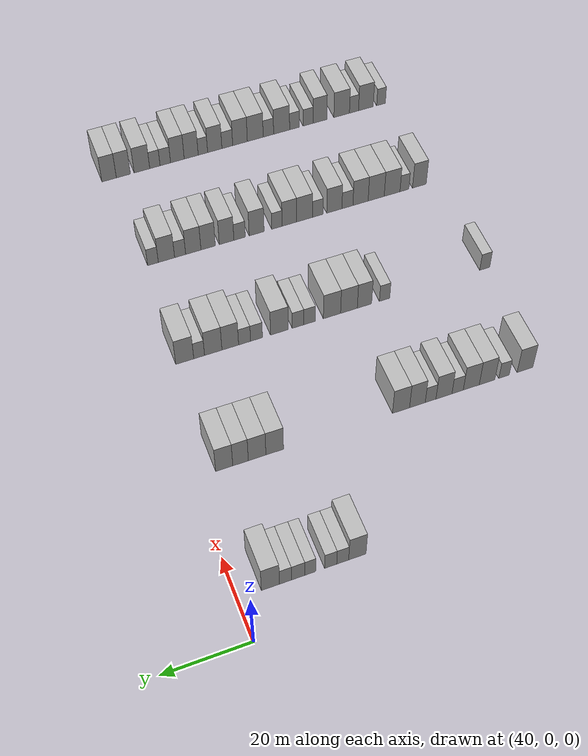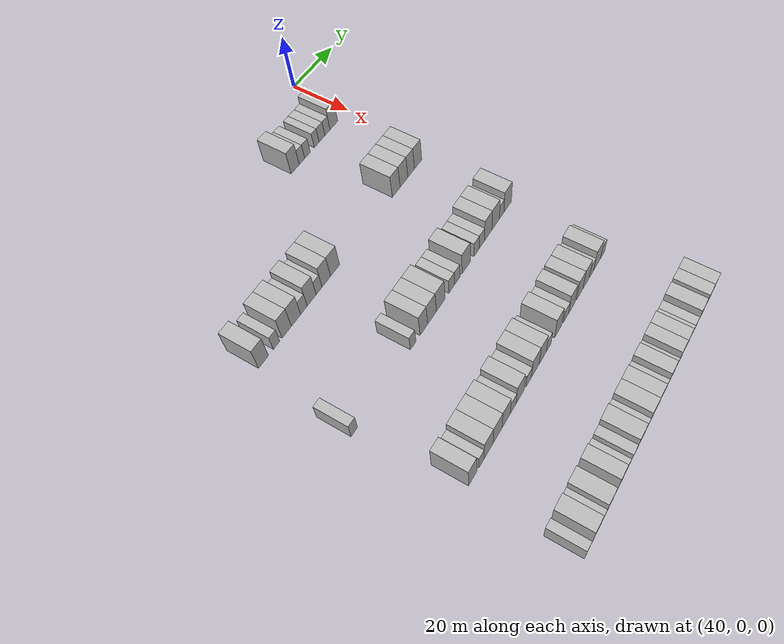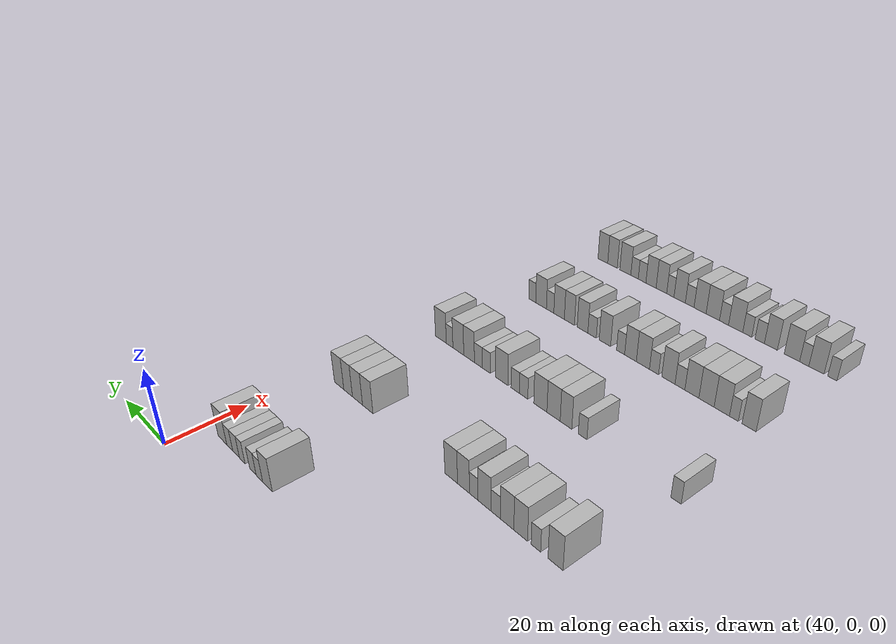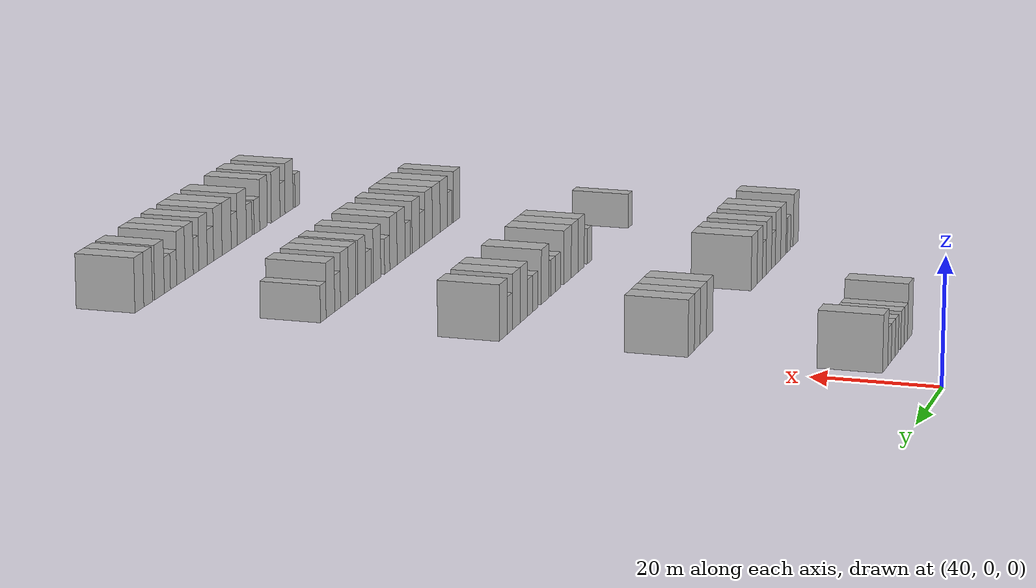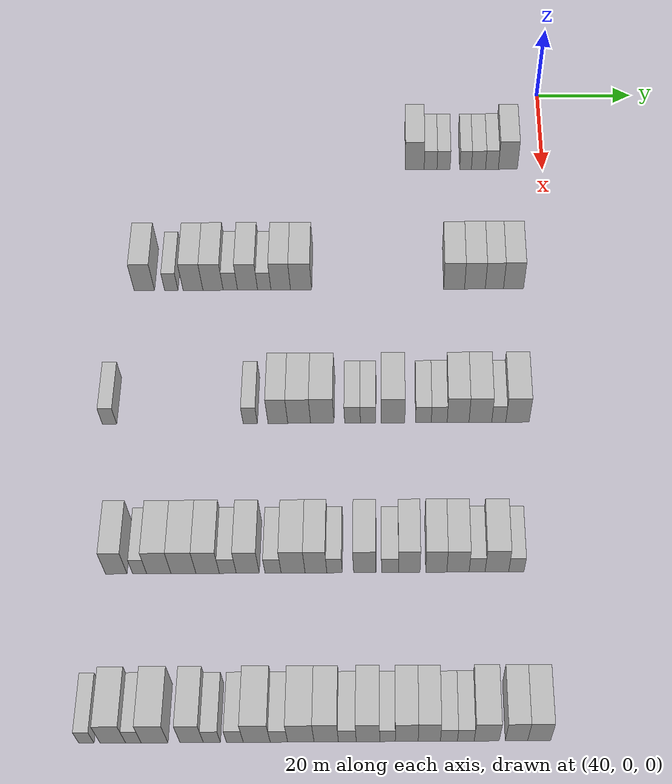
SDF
<sdf version="1.6">
 <world name="default">
  <model name="building_338">
   <static>1</static>
   <pose>55.0000 -26.6779 0 0.000000 0.000000 0.000000</pose>
   <link name="link">
    <pose>0 0 4.50 0 0 0</pose>
    <collision name="collision"><geometry><box><size>10.0000 3.9303 9.0000</size></box></geometry></collision>
    <visual name="visual">
     <cast_shadows>0</cast_shadows>
     <geometry><box><size>10.0000 3.9303 9.0000</size></box></geometry>
     <material>
      <script>
       <uri>model://HANNAS_wall/materials/scripts</uri>
       <uri>model://HANNAS_wall/materials/textures</uri>
       <name>vrc/HANNAS_wall</name>
      </script>
     </material>
    </visual>
   </link>
  </model>
  <model name="building_339">
   <static>1</static>
   <pose>55.0000 -23.3719 0 0.000000 0.000000 0.000000</pose>
   <link name="link">
    <pose>0 0 3.00 0 0 0</pose>
    <collision name="collision"><geometry><box><size>10.0000 2.6817 6.0000</size></box></geometry></collision>
    <visual name="visual">
     <cast_shadows>0</cast_shadows>
     <geometry><box><size>10.0000 2.6817 6.0000</size></box></geometry>
     <material>
      <script>
       <uri>model://HANNAS_wall/materials/scripts</uri>
       <uri>model://HANNAS_wall/materials/textures</uri>
       <name>vrc/HANNAS_wall</name>
      </script>
     </material>
    </visual>
   </link>
  </model>
  <model name="building_340">
   <static>1</static>
   <pose>55.0000 -20.6647 0 0.000000 0.000000 0.000000</pose>
   <link name="link">
    <pose>0 0 3.00 0 0 0</pose>
    <collision name="collision"><geometry><box><size>10.0000 2.7328 6.0000</size></box></geometry></collision>
    <visual name="visual">
     <cast_shadows>0</cast_shadows>
     <geometry><box><size>10.0000 2.7328 6.0000</size></box></geometry>
     <material>
      <script>
       <uri>model://HANNAS_wall/materials/scripts</uri>
       <uri>model://HANNAS_wall/materials/textures</uri>
       <name>vrc/HANNAS_wall</name>
      </script>
     </material>
    </visual>
   </link>
  </model>
  <model name="building_341">
   <static>1</static>
   <pose>55.0000 -16.0815 0 0.000000 0.000000 0.000000</pose>
   <link name="link">
    <pose>0 0 3.00 0 0 0</pose>
    <collision name="collision"><geometry><box><size>10.0000 2.4335 6.0000</size></box></geometry></collision>
    <visual name="visual">
     <cast_shadows>0</cast_shadows>
     <geometry><box><size>10.0000 2.4335 6.0000</size></box></geometry>
     <material>
      <script>
       <uri>model://HANNAS_wall/materials/scripts</uri>
       <uri>model://HANNAS_wall/materials/textures</uri>
       <name>vrc/HANNAS_wall</name>
      </script>
     </material>
    </visual>
   </link>
  </model>
  <model name="building_342">
   <static>1</static>
   <pose>55.0000 -13.3876 0 0.000000 0.000000 0.000000</pose>
   <link name="link">
    <pose>0 0 3.00 0 0 0</pose>
    <collision name="collision"><geometry><box><size>10.0000 2.9544 6.0000</size></box></geometry></collision>
    <visual name="visual">
     <cast_shadows>0</cast_shadows>
     <geometry><box><size>10.0000 2.9544 6.0000</size></box></geometry>
     <material>
      <script>
       <uri>model://HANNAS_wall/materials/scripts</uri>
       <uri>model://HANNAS_wall/materials/textures</uri>
       <name>vrc/HANNAS_wall</name>
      </script>
     </material>
    </visual>
   </link>
  </model>
  <model name="building_343">
   <static>1</static>
   <pose>55.0000 -10.5770 0 0.000000 0.000000 0.000000</pose>
   <link name="link">
    <pose>0 0 3.00 0 0 0</pose>
    <collision name="collision"><geometry><box><size>10.0000 2.6668 6.0000</size></box></geometry></collision>
    <visual name="visual">
     <cast_shadows>0</cast_shadows>
     <geometry><box><size>10.0000 2.6668 6.0000</size></box></geometry>
     <material>
      <script>
       <uri>model://HANNAS_wall/materials/scripts</uri>
       <uri>model://HANNAS_wall/materials/textures</uri>
       <name>vrc/HANNAS_wall</name>
      </script>
     </material>
    </visual>
   </link>
  </model>
  <model name="building_344">
   <static>1</static>
   <pose>55.0000 -7.2520 0 0.000000 0.000000 0.000000</pose>
   <link name="link">
    <pose>0 0 4.50 0 0 0</pose>
    <collision name="collision"><geometry><box><size>10.0000 3.9832 9.0000</size></box></geometry></collision>
    <visual name="visual">
     <cast_shadows>0</cast_shadows>
     <geometry><box><size>10.0000 3.9832 9.0000</size></box></geometry>
     <material>
      <script>
       <uri>model://HANNAS_wall/materials/scripts</uri>
       <uri>model://HANNAS_wall/materials/textures</uri>
       <name>vrc/HANNAS_wall</name>
      </script>
     </material>
    </visual>
   </link>
  </model>
  <model name="building_540">
   <static>1</static>
   <pose>85.0000 -80.5701 0 0.000000 0.000000 0.000000</pose>
   <link name="link">
    <pose>0 0 4.50 0 0 0</pose>
    <collision name="collision"><geometry><box><size>10.0000 4.0332 9.0000</size></box></geometry></collision>
    <visual name="visual">
     <cast_shadows>0</cast_shadows>
     <geometry><box><size>10.0000 4.0332 9.0000</size></box></geometry>
     <material>
      <script>
       <uri>model://HANNAS_wall/materials/scripts</uri>
       <uri>model://HANNAS_wall/materials/textures</uri>
       <name>vrc/HANNAS_wall</name>
      </script>
     </material>
    </visual>
   </link>
  </model>
  <model name="building_541">
   <static>1</static>
   <pose>85.0000 -75.2313 0 0.000000 0.000000 0.000000</pose>
   <link name="link">
    <pose>0 0 3.00 0 0 0</pose>
    <collision name="collision"><geometry><box><size>10.0000 2.6445 6.0000</size></box></geometry></collision>
    <visual name="visual">
     <cast_shadows>0</cast_shadows>
     <geometry><box><size>10.0000 2.6445 6.0000</size></box></geometry>
     <material>
      <script>
       <uri>model://HANNAS_wall/materials/scripts</uri>
       <uri>model://HANNAS_wall/materials/textures</uri>
       <name>vrc/HANNAS_wall</name>
      </script>
     </material>
    </visual>
   </link>
  </model>
  <model name="building_542">
   <static>1</static>
   <pose>85.0000 -70.9464 0 0.000000 0.000000 0.000000</pose>
   <link name="link">
    <pose>0 0 4.50 0 0 0</pose>
    <collision name="collision"><geometry><box><size>10.0000 3.9252 9.0000</size></box></geometry></collision>
    <visual name="visual">
     <cast_shadows>0</cast_shadows>
     <geometry><box><size>10.0000 3.9252 9.0000</size></box></geometry>
     <material>
      <script>
       <uri>model://HANNAS_wall/materials/scripts</uri>
       <uri>model://HANNAS_wall/materials/textures</uri>
       <name>vrc/HANNAS_wall</name>
      </script>
     </material>
    </visual>
   </link>
  </model>
  <model name="building_543">
   <static>1</static>
   <pose>85.0000 -66.9853 0 0.000000 0.000000 0.000000</pose>
   <link name="link">
    <pose>0 0 4.50 0 0 0</pose>
    <collision name="collision"><geometry><box><size>10.0000 3.9970 9.0000</size></box></geometry></collision>
    <visual name="visual">
     <cast_shadows>0</cast_shadows>
     <geometry><box><size>10.0000 3.9970 9.0000</size></box></geometry>
     <material>
      <script>
       <uri>model://HANNAS_wall/materials/scripts</uri>
       <uri>model://HANNAS_wall/materials/textures</uri>
       <name>vrc/HANNAS_wall</name>
      </script>
     </material>
    </visual>
   </link>
  </model>
  <model name="building_544">
   <static>1</static>
   <pose>85.0000 -63.5674 0 0.000000 0.000000 0.000000</pose>
   <link name="link">
    <pose>0 0 3.00 0 0 0</pose>
    <collision name="collision"><geometry><box><size>10.0000 2.8388 6.0000</size></box></geometry></collision>
    <visual name="visual">
     <cast_shadows>0</cast_shadows>
     <geometry><box><size>10.0000 2.8388 6.0000</size></box></geometry>
     <material>
      <script>
       <uri>model://HANNAS_wall/materials/scripts</uri>
       <uri>model://HANNAS_wall/materials/textures</uri>
       <name>vrc/HANNAS_wall</name>
      </script>
     </material>
    </visual>
   </link>
  </model>
  <model name="building_545">
   <static>1</static>
   <pose>85.0000 -60.1618 0 0.000000 0.000000 0.000000</pose>
   <link name="link">
    <pose>0 0 4.50 0 0 0</pose>
    <collision name="collision"><geometry><box><size>10.0000 3.9724 9.0000</size></box></geometry></collision>
    <visual name="visual">
     <cast_shadows>0</cast_shadows>
     <geometry><box><size>10.0000 3.9724 9.0000</size></box></geometry>
     <material>
      <script>
       <uri>model://HANNAS_wall/materials/scripts</uri>
       <uri>model://HANNAS_wall/materials/textures</uri>
       <name>vrc/HANNAS_wall</name>
      </script>
     </material>
    </visual>
   </link>
  </model>
  <model name="building_546">
   <static>1</static>
   <pose>85.0000 -56.8523 0 0.000000 0.000000 0.000000</pose>
   <link name="link">
    <pose>0 0 3.00 0 0 0</pose>
    <collision name="collision"><geometry><box><size>10.0000 2.6466 6.0000</size></box></geometry></collision>
    <visual name="visual">
     <cast_shadows>0</cast_shadows>
     <geometry><box><size>10.0000 2.6466 6.0000</size></box></geometry>
     <material>
      <script>
       <uri>model://HANNAS_wall/materials/scripts</uri>
       <uri>model://HANNAS_wall/materials/textures</uri>
       <name>vrc/HANNAS_wall</name>
      </script>
     </material>
    </visual>
   </link>
  </model>
  <model name="building_547">
   <static>1</static>
   <pose>85.0000 -53.5977 0 0.000000 0.000000 0.000000</pose>
   <link name="link">
    <pose>0 0 4.50 0 0 0</pose>
    <collision name="collision"><geometry><box><size>10.0000 3.8628 9.0000</size></box></geometry></collision>
    <visual name="visual">
     <cast_shadows>0</cast_shadows>
     <geometry><box><size>10.0000 3.8628 9.0000</size></box></geometry>
     <material>
      <script>
       <uri>model://HANNAS_wall/materials/scripts</uri>
       <uri>model://HANNAS_wall/materials/textures</uri>
       <name>vrc/HANNAS_wall</name>
      </script>
     </material>
    </visual>
   </link>
  </model>
  <model name="building_548">
   <static>1</static>
   <pose>85.0000 -49.5736 0 0.000000 0.000000 0.000000</pose>
   <link name="link">
    <pose>0 0 4.50 0 0 0</pose>
    <collision name="collision"><geometry><box><size>10.0000 4.1854 9.0000</size></box></geometry></collision>
    <visual name="visual">
     <cast_shadows>0</cast_shadows>
     <geometry><box><size>10.0000 4.1854 9.0000</size></box></geometry>
     <material>
      <script>
       <uri>model://HANNAS_wall/materials/scripts</uri>
       <uri>model://HANNAS_wall/materials/textures</uri>
       <name>vrc/HANNAS_wall</name>
      </script>
     </material>
    </visual>
   </link>
  </model>
  <model name="building_549">
   <static>1</static>
   <pose>85.0000 -19.2802 0 0.000000 0.000000 0.000000</pose>
   <link name="link">
    <pose>0 0 4.50 0 0 0</pose>
    <collision name="collision"><geometry><box><size>10.0000 4.1338 9.0000</size></box></geometry></collision>
    <visual name="visual">
     <cast_shadows>0</cast_shadows>
     <geometry><box><size>10.0000 4.1338 9.0000</size></box></geometry>
     <material>
      <script>
       <uri>model://HANNAS_wall/materials/scripts</uri>
       <uri>model://HANNAS_wall/materials/textures</uri>
       <name>vrc/HANNAS_wall</name>
      </script>
     </material>
    </visual>
   </link>
  </model>
  <model name="building_550">
   <static>1</static>
   <pose>85.0000 -15.1630 0 0.000000 0.000000 0.000000</pose>
   <link name="link">
    <pose>0 0 4.50 0 0 0</pose>
    <collision name="collision"><geometry><box><size>10.0000 4.1006 9.0000</size></box></geometry></collision>
    <visual name="visual">
     <cast_shadows>0</cast_shadows>
     <geometry><box><size>10.0000 4.1006 9.0000</size></box></geometry>
     <material>
      <script>
       <uri>model://HANNAS_wall/materials/scripts</uri>
       <uri>model://HANNAS_wall/materials/textures</uri>
       <name>vrc/HANNAS_wall</name>
      </script>
     </material>
    </visual>
   </link>
  </model>
  <model name="building_551">
   <static>1</static>
   <pose>85.0000 -11.3084 0 0.000000 0.000000 0.000000</pose>
   <link name="link">
    <pose>0 0 4.50 0 0 0</pose>
    <collision name="collision"><geometry><box><size>10.0000 3.6086 9.0000</size></box></geometry></collision>
    <visual name="visual">
     <cast_shadows>0</cast_shadows>
     <geometry><box><size>10.0000 3.6086 9.0000</size></box></geometry>
     <material>
      <script>
       <uri>model://HANNAS_wall/materials/scripts</uri>
       <uri>model://HANNAS_wall/materials/textures</uri>
       <name>vrc/HANNAS_wall</name>
      </script>
     </material>
    </visual>
   </link>
  </model>
  <model name="building_552">
   <static>1</static>
   <pose>85.0000 -7.5210 0 0.000000 0.000000 0.000000</pose>
   <link name="link">
    <pose>0 0 4.50 0 0 0</pose>
    <collision name="collision"><geometry><box><size>10.0000 3.9662 9.0000</size></box></geometry></collision>
    <visual name="visual">
     <cast_shadows>0</cast_shadows>
     <geometry><box><size>10.0000 3.9662 9.0000</size></box></geometry>
     <material>
      <script>
       <uri>model://HANNAS_wall/materials/scripts</uri>
       <uri>model://HANNAS_wall/materials/textures</uri>
       <name>vrc/HANNAS_wall</name>
      </script>
     </material>
    </visual>
   </link>
  </model>
  <model name="building_763">
   <static>1</static>
   <pose>115.0000 -84.5802 0 0.000000 0.000000 0.000000</pose>
   <link name="link">
    <pose>0 0 3.00 0 0 0</pose>
    <collision name="collision"><geometry><box><size>10.0000 2.6753 6.0000</size></box></geometry></collision>
    <visual name="visual">
     <cast_shadows>0</cast_shadows>
     <geometry><box><size>10.0000 2.6753 6.0000</size></box></geometry>
     <material>
      <script>
       <uri>model://HANNAS_wall/materials/scripts</uri>
       <uri>model://HANNAS_wall/materials/textures</uri>
       <name>vrc/HANNAS_wall</name>
      </script>
     </material>
    </visual>
   </link>
  </model>
  <model name="building_764">
   <static>1</static>
   <pose>115.0000 -58.2425 0 0.000000 0.000000 0.000000</pose>
   <link name="link">
    <pose>0 0 3.00 0 0 0</pose>
    <collision name="collision"><geometry><box><size>10.0000 2.6667 6.0000</size></box></geometry></collision>
    <visual name="visual">
     <cast_shadows>0</cast_shadows>
     <geometry><box><size>10.0000 2.6667 6.0000</size></box></geometry>
     <material>
      <script>
       <uri>model://HANNAS_wall/materials/scripts</uri>
       <uri>model://HANNAS_wall/materials/textures</uri>
       <name>vrc/HANNAS_wall</name>
      </script>
     </material>
    </visual>
   </link>
  </model>
  <model name="building_765">
   <static>1</static>
   <pose>115.0000 -53.0702 0 0.000000 0.000000 0.000000</pose>
   <link name="link">
    <pose>0 0 4.50 0 0 0</pose>
    <collision name="collision"><geometry><box><size>10.0000 3.6779 9.0000</size></box></geometry></collision>
    <visual name="visual">
     <cast_shadows>0</cast_shadows>
     <geometry><box><size>10.0000 3.6779 9.0000</size></box></geometry>
     <material>
      <script>
       <uri>model://HANNAS_wall/materials/scripts</uri>
       <uri>model://HANNAS_wall/materials/textures</uri>
       <name>vrc/HANNAS_wall</name>
      </script>
     </material>
    </visual>
   </link>
  </model>
  <model name="building_766">
   <static>1</static>
   <pose>115.0000 -49.0939 0 0.000000 0.000000 0.000000</pose>
   <link name="link">
    <pose>0 0 4.50 0 0 0</pose>
    <collision name="collision"><geometry><box><size>10.0000 4.2746 9.0000</size></box></geometry></collision>
    <visual name="visual">
     <cast_shadows>0</cast_shadows>
     <geometry><box><size>10.0000 4.2746 9.0000</size></box></geometry>
     <material>
      <script>
       <uri>model://HANNAS_wall/materials/scripts</uri>
       <uri>model://HANNAS_wall/materials/textures</uri>
       <name>vrc/HANNAS_wall</name>
      </script>
     </material>
    </visual>
   </link>
  </model>
  <model name="building_767">
   <static>1</static>
   <pose>115.0000 -44.7651 0 0.000000 0.000000 0.000000</pose>
   <link name="link">
    <pose>0 0 4.50 0 0 0</pose>
    <collision name="collision"><geometry><box><size>10.0000 4.3829 9.0000</size></box></geometry></collision>
    <visual name="visual">
     <cast_shadows>0</cast_shadows>
     <geometry><box><size>10.0000 4.3829 9.0000</size></box></geometry>
     <material>
      <script>
       <uri>model://HANNAS_wall/materials/scripts</uri>
       <uri>model://HANNAS_wall/materials/textures</uri>
       <name>vrc/HANNAS_wall</name>
      </script>
     </material>
    </visual>
   </link>
  </model>
  <model name="building_768">
   <static>1</static>
   <pose>115.0000 -39.1012 0 0.000000 0.000000 0.000000</pose>
   <link name="link">
    <pose>0 0 3.00 0 0 0</pose>
    <collision name="collision"><geometry><box><size>10.0000 2.9448 6.0000</size></box></geometry></collision>
    <visual name="visual">
     <cast_shadows>0</cast_shadows>
     <geometry><box><size>10.0000 2.9448 6.0000</size></box></geometry>
     <material>
      <script>
       <uri>model://HANNAS_wall/materials/scripts</uri>
       <uri>model://HANNAS_wall/materials/textures</uri>
       <name>vrc/HANNAS_wall</name>
      </script>
     </material>
    </visual>
   </link>
  </model>
  <model name="building_769">
   <static>1</static>
   <pose>115.0000 -36.1831 0 0.000000 0.000000 0.000000</pose>
   <link name="link">
    <pose>0 0 3.00 0 0 0</pose>
    <collision name="collision"><geometry><box><size>10.0000 2.8914 6.0000</size></box></geometry></collision>
    <visual name="visual">
     <cast_shadows>0</cast_shadows>
     <geometry><box><size>10.0000 2.8914 6.0000</size></box></geometry>
     <material>
      <script>
       <uri>model://HANNAS_wall/materials/scripts</uri>
       <uri>model://HANNAS_wall/materials/textures</uri>
       <name>vrc/HANNAS_wall</name>
      </script>
     </material>
    </visual>
   </link>
  </model>
  <model name="building_770">
   <static>1</static>
   <pose>115.0000 -31.5231 0 0.000000 0.000000 0.000000</pose>
   <link name="link">
    <pose>0 0 4.50 0 0 0</pose>
    <collision name="collision"><geometry><box><size>10.0000 4.4288 9.0000</size></box></geometry></collision>
    <visual name="visual">
     <cast_shadows>0</cast_shadows>
     <geometry><box><size>10.0000 4.4288 9.0000</size></box></geometry>
     <material>
      <script>
       <uri>model://HANNAS_wall/materials/scripts</uri>
       <uri>model://HANNAS_wall/materials/textures</uri>
       <name>vrc/HANNAS_wall</name>
      </script>
     </material>
    </visual>
   </link>
  </model>
  <model name="building_771">
   <static>1</static>
   <pose>115.0000 -25.8360 0 0.000000 0.000000 0.000000</pose>
   <link name="link">
    <pose>0 0 3.00 0 0 0</pose>
    <collision name="collision"><geometry><box><size>10.0000 2.9453 6.0000</size></box></geometry></collision>
    <visual name="visual">
     <cast_shadows>0</cast_shadows>
     <geometry><box><size>10.0000 2.9453 6.0000</size></box></geometry>
     <material>
      <script>
       <uri>model://HANNAS_wall/materials/scripts</uri>
       <uri>model://HANNAS_wall/materials/textures</uri>
       <name>vrc/HANNAS_wall</name>
      </script>
     </material>
    </visual>
   </link>
  </model>
  <model name="building_772">
   <static>1</static>
   <pose>115.0000 -22.8825 0 0.000000 0.000000 0.000000</pose>
   <link name="link">
    <pose>0 0 3.00 0 0 0</pose>
    <collision name="collision"><geometry><box><size>10.0000 2.9619 6.0000</size></box></geometry></collision>
    <visual name="visual">
     <cast_shadows>0</cast_shadows>
     <geometry><box><size>10.0000 2.9619 6.0000</size></box></geometry>
     <material>
      <script>
       <uri>model://HANNAS_wall/materials/scripts</uri>
       <uri>model://HANNAS_wall/materials/textures</uri>
       <name>vrc/HANNAS_wall</name>
      </script>
     </material>
    </visual>
   </link>
  </model>
  <model name="building_773">
   <static>1</static>
   <pose>115.0000 -19.3565 0 0.000000 0.000000 0.000000</pose>
   <link name="link">
    <pose>0 0 4.50 0 0 0</pose>
    <collision name="collision"><geometry><box><size>10.0000 4.0900 9.0000</size></box></geometry></collision>
    <visual name="visual">
     <cast_shadows>0</cast_shadows>
     <geometry><box><size>10.0000 4.0900 9.0000</size></box></geometry>
     <material>
      <script>
       <uri>model://HANNAS_wall/materials/scripts</uri>
       <uri>model://HANNAS_wall/materials/textures</uri>
       <name>vrc/HANNAS_wall</name>
      </script>
     </material>
    </visual>
   </link>
  </model>
  <model name="building_774">
   <static>1</static>
   <pose>115.0000 -15.1823 0 0.000000 0.000000 0.000000</pose>
   <link name="link">
    <pose>0 0 4.50 0 0 0</pose>
    <collision name="collision"><geometry><box><size>10.0000 4.2585 9.0000</size></box></geometry></collision>
    <visual name="visual">
     <cast_shadows>0</cast_shadows>
     <geometry><box><size>10.0000 4.2585 9.0000</size></box></geometry>
     <material>
      <script>
       <uri>model://HANNAS_wall/materials/scripts</uri>
       <uri>model://HANNAS_wall/materials/textures</uri>
       <name>vrc/HANNAS_wall</name>
      </script>
     </material>
    </visual>
   </link>
  </model>
  <model name="building_775">
   <static>1</static>
   <pose>115.0000 -11.7386 0 0.000000 0.000000 0.000000</pose>
   <link name="link">
    <pose>0 0 3.00 0 0 0</pose>
    <collision name="collision"><geometry><box><size>10.0000 2.6288 6.0000</size></box></geometry></collision>
    <visual name="visual">
     <cast_shadows>0</cast_shadows>
     <geometry><box><size>10.0000 2.6288 6.0000</size></box></geometry>
     <material>
      <script>
       <uri>model://HANNAS_wall/materials/scripts</uri>
       <uri>model://HANNAS_wall/materials/textures</uri>
       <name>vrc/HANNAS_wall</name>
      </script>
     </material>
    </visual>
   </link>
  </model>
  <model name="building_776">
   <static>1</static>
   <pose>115.0000 -8.2365 0 0.000000 0.000000 0.000000</pose>
   <link name="link">
    <pose>0 0 4.50 0 0 0</pose>
    <collision name="collision"><geometry><box><size>10.0000 4.3753 9.0000</size></box></geometry></collision>
    <visual name="visual">
     <cast_shadows>0</cast_shadows>
     <geometry><box><size>10.0000 4.3753 9.0000</size></box></geometry>
     <material>
      <script>
       <uri>model://HANNAS_wall/materials/scripts</uri>
       <uri>model://HANNAS_wall/materials/textures</uri>
       <name>vrc/HANNAS_wall</name>
      </script>
     </material>
    </visual>
   </link>
  </model>
  <model name="building_984">
   <static>1</static>
   <pose>145.0000 -80.4926 0 0.000000 0.000000 0.000000</pose>
   <link name="link">
    <pose>0 0 4.50 0 0 0</pose>
    <collision name="collision"><geometry><box><size>10.0000 3.7879 9.0000</size></box></geometry></collision>
    <visual name="visual">
     <cast_shadows>0</cast_shadows>
     <geometry><box><size>10.0000 3.7879 9.0000</size></box></geometry>
     <material>
      <script>
       <uri>model://HANNAS_wall/materials/scripts</uri>
       <uri>model://HANNAS_wall/materials/textures</uri>
       <name>vrc/HANNAS_wall</name>
      </script>
     </material>
    </visual>
   </link>
  </model>
  <model name="building_985">
   <static>1</static>
   <pose>145.0000 -76.3743 0 0.000000 0.000000 0.000000</pose>
   <link name="link">
    <pose>0 0 3.00 0 0 0</pose>
    <collision name="collision"><geometry><box><size>10.0000 2.4488 6.0000</size></box></geometry></collision>
    <visual name="visual">
     <cast_shadows>0</cast_shadows>
     <geometry><box><size>10.0000 2.4488 6.0000</size></box></geometry>
     <material>
      <script>
       <uri>model://HANNAS_wall/materials/scripts</uri>
       <uri>model://HANNAS_wall/materials/textures</uri>
       <name>vrc/HANNAS_wall</name>
      </script>
     </material>
    </visual>
   </link>
  </model>
  <model name="building_986">
   <static>1</static>
   <pose>145.0000 -72.9913 0 0.000000 0.000000 0.000000</pose>
   <link name="link">
    <pose>0 0 4.50 0 0 0</pose>
    <collision name="collision"><geometry><box><size>10.0000 4.3173 9.0000</size></box></geometry></collision>
    <visual name="visual">
     <cast_shadows>0</cast_shadows>
     <geometry><box><size>10.0000 4.3173 9.0000</size></box></geometry>
     <material>
      <script>
       <uri>model://HANNAS_wall/materials/scripts</uri>
       <uri>model://HANNAS_wall/materials/textures</uri>
       <name>vrc/HANNAS_wall</name>
      </script>
     </material>
    </visual>
   </link>
  </model>
  <model name="building_987">
   <static>1</static>
   <pose>145.0000 -68.6390 0 0.000000 0.000000 0.000000</pose>
   <link name="link">
    <pose>0 0 4.50 0 0 0</pose>
    <collision name="collision"><geometry><box><size>10.0000 4.3872 9.0000</size></box></geometry></collision>
    <visual name="visual">
     <cast_shadows>0</cast_shadows>
     <geometry><box><size>10.0000 4.3872 9.0000</size></box></geometry>
     <material>
      <script>
       <uri>model://HANNAS_wall/materials/scripts</uri>
       <uri>model://HANNAS_wall/materials/textures</uri>
       <name>vrc/HANNAS_wall</name>
      </script>
     </material>
    </visual>
   </link>
  </model>
  <model name="building_988">
   <static>1</static>
   <pose>145.0000 -64.3834 0 0.000000 0.000000 0.000000</pose>
   <link name="link">
    <pose>0 0 4.50 0 0 0</pose>
    <collision name="collision"><geometry><box><size>10.0000 4.1239 9.0000</size></box></geometry></collision>
    <visual name="visual">
     <cast_shadows>0</cast_shadows>
     <geometry><box><size>10.0000 4.1239 9.0000</size></box></geometry>
     <material>
      <script>
       <uri>model://HANNAS_wall/materials/scripts</uri>
       <uri>model://HANNAS_wall/materials/textures</uri>
       <name>vrc/HANNAS_wall</name>
      </script>
     </material>
    </visual>
   </link>
  </model>
  <model name="building_989">
   <static>1</static>
   <pose>145.0000 -60.8324 0 0.000000 0.000000 0.000000</pose>
   <link name="link">
    <pose>0 0 3.00 0 0 0</pose>
    <collision name="collision"><geometry><box><size>10.0000 2.9783 6.0000</size></box></geometry></collision>
    <visual name="visual">
     <cast_shadows>0</cast_shadows>
     <geometry><box><size>10.0000 2.9783 6.0000</size></box></geometry>
     <material>
      <script>
       <uri>model://HANNAS_wall/materials/scripts</uri>
       <uri>model://HANNAS_wall/materials/textures</uri>
       <name>vrc/HANNAS_wall</name>
      </script>
     </material>
    </visual>
   </link>
  </model>
  <model name="building_990">
   <static>1</static>
   <pose>145.0000 -57.3067 0 0.000000 0.000000 0.000000</pose>
   <link name="link">
    <pose>0 0 4.50 0 0 0</pose>
    <collision name="collision"><geometry><box><size>10.0000 4.0730 9.0000</size></box></geometry></collision>
    <visual name="visual">
     <cast_shadows>0</cast_shadows>
     <geometry><box><size>10.0000 4.0730 9.0000</size></box></geometry>
     <material>
      <script>
       <uri>model://HANNAS_wall/materials/scripts</uri>
       <uri>model://HANNAS_wall/materials/textures</uri>
       <name>vrc/HANNAS_wall</name>
      </script>
     </material>
    </visual>
   </link>
  </model>
  <model name="building_991">
   <static>1</static>
   <pose>145.0000 -52.8490 0 0.000000 0.000000 0.000000</pose>
   <link name="link">
    <pose>0 0 3.00 0 0 0</pose>
    <collision name="collision"><geometry><box><size>10.0000 2.8425 6.0000</size></box></geometry></collision>
    <visual name="visual">
     <cast_shadows>0</cast_shadows>
     <geometry><box><size>10.0000 2.8425 6.0000</size></box></geometry>
     <material>
      <script>
       <uri>model://HANNAS_wall/materials/scripts</uri>
       <uri>model://HANNAS_wall/materials/textures</uri>
       <name>vrc/HANNAS_wall</name>
      </script>
     </material>
    </visual>
   </link>
  </model>
  <model name="building_992">
   <static>1</static>
   <pose>145.0000 -49.3140 0 0.000000 0.000000 0.000000</pose>
   <link name="link">
    <pose>0 0 4.50 0 0 0</pose>
    <collision name="collision"><geometry><box><size>10.0000 4.2274 9.0000</size></box></geometry></collision>
    <visual name="visual">
     <cast_shadows>0</cast_shadows>
     <geometry><box><size>10.0000 4.2274 9.0000</size></box></geometry>
     <material>
      <script>
       <uri>model://HANNAS_wall/materials/scripts</uri>
       <uri>model://HANNAS_wall/materials/textures</uri>
       <name>vrc/HANNAS_wall</name>
      </script>
     </material>
    </visual>
   </link>
  </model>
  <model name="building_993">
   <static>1</static>
   <pose>145.0000 -45.2807 0 0.000000 0.000000 0.000000</pose>
   <link name="link">
    <pose>0 0 4.50 0 0 0</pose>
    <collision name="collision"><geometry><box><size>10.0000 3.8392 9.0000</size></box></geometry></collision>
    <visual name="visual">
     <cast_shadows>0</cast_shadows>
     <geometry><box><size>10.0000 3.8392 9.0000</size></box></geometry>
     <material>
      <script>
       <uri>model://HANNAS_wall/materials/scripts</uri>
       <uri>model://HANNAS_wall/materials/textures</uri>
       <name>vrc/HANNAS_wall</name>
      </script>
     </material>
    </visual>
   </link>
  </model>
  <model name="building_994">
   <static>1</static>
   <pose>145.0000 -41.9987 0 0.000000 0.000000 0.000000</pose>
   <link name="link">
    <pose>0 0 3.00 0 0 0</pose>
    <collision name="collision"><geometry><box><size>10.0000 2.7249 6.0000</size></box></geometry></collision>
    <visual name="visual">
     <cast_shadows>0</cast_shadows>
     <geometry><box><size>10.0000 2.7249 6.0000</size></box></geometry>
     <material>
      <script>
       <uri>model://HANNAS_wall/materials/scripts</uri>
       <uri>model://HANNAS_wall/materials/textures</uri>
       <name>vrc/HANNAS_wall</name>
      </script>
     </material>
    </visual>
   </link>
  </model>
  <model name="building_995">
   <static>1</static>
   <pose>145.0000 -36.6700 0 0.000000 0.000000 0.000000</pose>
   <link name="link">
    <pose>0 0 4.50 0 0 0</pose>
    <collision name="collision"><geometry><box><size>10.0000 3.9324 9.0000</size></box></geometry></collision>
    <visual name="visual">
     <cast_shadows>0</cast_shadows>
     <geometry><box><size>10.0000 3.9324 9.0000</size></box></geometry>
     <material>
      <script>
       <uri>model://HANNAS_wall/materials/scripts</uri>
       <uri>model://HANNAS_wall/materials/textures</uri>
       <name>vrc/HANNAS_wall</name>
      </script>
     </material>
    </visual>
   </link>
  </model>
  <model name="building_996">
   <static>1</static>
   <pose>145.0000 -32.2189 0 0.000000 0.000000 0.000000</pose>
   <link name="link">
    <pose>0 0 3.00 0 0 0</pose>
    <collision name="collision"><geometry><box><size>10.0000 2.9698 6.0000</size></box></geometry></collision>
    <visual name="visual">
     <cast_shadows>0</cast_shadows>
     <geometry><box><size>10.0000 2.9698 6.0000</size></box></geometry>
     <material>
      <script>
       <uri>model://HANNAS_wall/materials/scripts</uri>
       <uri>model://HANNAS_wall/materials/textures</uri>
       <name>vrc/HANNAS_wall</name>
      </script>
     </material>
    </visual>
   </link>
  </model>
  <model name="building_997">
   <static>1</static>
   <pose>145.0000 -28.8271 0 0.000000 0.000000 0.000000</pose>
   <link name="link">
    <pose>0 0 4.50 0 0 0</pose>
    <collision name="collision"><geometry><box><size>10.0000 3.8138 9.0000</size></box></geometry></collision>
    <visual name="visual">
     <cast_shadows>0</cast_shadows>
     <geometry><box><size>10.0000 3.8138 9.0000</size></box></geometry>
     <material>
      <script>
       <uri>model://HANNAS_wall/materials/scripts</uri>
       <uri>model://HANNAS_wall/materials/textures</uri>
       <name>vrc/HANNAS_wall</name>
      </script>
     </material>
    </visual>
   </link>
  </model>
  <model name="building_998">
   <static>1</static>
   <pose>145.0000 -24.0603 0 0.000000 0.000000 0.000000</pose>
   <link name="link">
    <pose>0 0 4.50 0 0 0</pose>
    <collision name="collision"><geometry><box><size>10.0000 3.7197 9.0000</size></box></geometry></collision>
    <visual name="visual">
     <cast_shadows>0</cast_shadows>
     <geometry><box><size>10.0000 3.7197 9.0000</size></box></geometry>
     <material>
      <script>
       <uri>model://HANNAS_wall/materials/scripts</uri>
       <uri>model://HANNAS_wall/materials/textures</uri>
       <name>vrc/HANNAS_wall</name>
      </script>
     </material>
    </visual>
   </link>
  </model>
  <model name="building_999">
   <static>1</static>
   <pose>145.0000 -20.2344 0 0.000000 0.000000 0.000000</pose>
   <link name="link">
    <pose>0 0 4.50 0 0 0</pose>
    <collision name="collision"><geometry><box><size>10.0000 3.9322 9.0000</size></box></geometry></collision>
    <visual name="visual">
     <cast_shadows>0</cast_shadows>
     <geometry><box><size>10.0000 3.9322 9.0000</size></box></geometry>
     <material>
      <script>
       <uri>model://HANNAS_wall/materials/scripts</uri>
       <uri>model://HANNAS_wall/materials/textures</uri>
       <name>vrc/HANNAS_wall</name>
      </script>
     </material>
    </visual>
   </link>
  </model>
  <model name="building_1000">
   <static>1</static>
   <pose>145.0000 -16.8572 0 0.000000 0.000000 0.000000</pose>
   <link name="link">
    <pose>0 0 3.00 0 0 0</pose>
    <collision name="collision"><geometry><box><size>10.0000 2.8221 6.0000</size></box></geometry></collision>
    <visual name="visual">
     <cast_shadows>0</cast_shadows>
     <geometry><box><size>10.0000 2.8221 6.0000</size></box></geometry>
     <material>
      <script>
       <uri>model://HANNAS_wall/materials/scripts</uri>
       <uri>model://HANNAS_wall/materials/textures</uri>
       <name>vrc/HANNAS_wall</name>
      </script>
     </material>
    </visual>
   </link>
  </model>
  <model name="building_1001">
   <static>1</static>
   <pose>145.0000 -13.3664 0 0.000000 0.000000 0.000000</pose>
   <link name="link">
    <pose>0 0 4.50 0 0 0</pose>
    <collision name="collision"><geometry><box><size>10.0000 4.1597 9.0000</size></box></geometry></collision>
    <visual name="visual">
     <cast_shadows>0</cast_shadows>
     <geometry><box><size>10.0000 4.1597 9.0000</size></box></geometry>
     <material>
      <script>
       <uri>model://HANNAS_wall/materials/scripts</uri>
       <uri>model://HANNAS_wall/materials/textures</uri>
       <name>vrc/HANNAS_wall</name>
      </script>
     </material>
    </visual>
   </link>
  </model>
  <model name="building_1002">
   <static>1</static>
   <pose>145.0000 -9.9262 0 0.000000 0.000000 0.000000</pose>
   <link name="link">
    <pose>0 0 3.00 0 0 0</pose>
    <collision name="collision"><geometry><box><size>10.0000 2.7206 6.0000</size></box></geometry></collision>
    <visual name="visual">
     <cast_shadows>0</cast_shadows>
     <geometry><box><size>10.0000 2.7206 6.0000</size></box></geometry>
     <material>
      <script>
       <uri>model://HANNAS_wall/materials/scripts</uri>
       <uri>model://HANNAS_wall/materials/textures</uri>
       <name>vrc/HANNAS_wall</name>
      </script>
     </material>
    </visual>
   </link>
  </model>
  <model name="building_1201">
   <static>1</static>
   <pose>175.0000 -82.6003 0 0.000000 0.000000 0.000000</pose>
   <link name="link">
    <pose>0 0 3.00 0 0 0</pose>
    <collision name="collision"><geometry><box><size>10.0000 2.5076 6.0000</size></box></geometry></collision>
    <visual name="visual">
     <cast_shadows>0</cast_shadows>
     <geometry><box><size>10.0000 2.5076 6.0000</size></box></geometry>
     <material>
      <script>
       <uri>model://HANNAS_wall/materials/scripts</uri>
       <uri>model://HANNAS_wall/materials/textures</uri>
       <name>vrc/HANNAS_wall</name>
      </script>
     </material>
    </visual>
   </link>
  </model>
  <model name="building_1202">
   <static>1</static>
   <pose>175.0000 -78.2369 0 0.000000 0.000000 0.000000</pose>
   <link name="link">
    <pose>0 0 4.50 0 0 0</pose>
    <collision name="collision"><geometry><box><size>10.0000 4.2193 9.0000</size></box></geometry></collision>
    <visual name="visual">
     <cast_shadows>0</cast_shadows>
     <geometry><box><size>10.0000 4.2193 9.0000</size></box></geometry>
     <material>
      <script>
       <uri>model://HANNAS_wall/materials/scripts</uri>
       <uri>model://HANNAS_wall/materials/textures</uri>
       <name>vrc/HANNAS_wall</name>
      </script>
     </material>
    </visual>
   </link>
  </model>
  <model name="building_1203">
   <static>1</static>
   <pose>175.0000 -74.8345 0 0.000000 0.000000 0.000000</pose>
   <link name="link">
    <pose>0 0 3.00 0 0 0</pose>
    <collision name="collision"><geometry><box><size>10.0000 2.5853 6.0000</size></box></geometry></collision>
    <visual name="visual">
     <cast_shadows>0</cast_shadows>
     <geometry><box><size>10.0000 2.5853 6.0000</size></box></geometry>
     <material>
      <script>
       <uri>model://HANNAS_wall/materials/scripts</uri>
       <uri>model://HANNAS_wall/materials/textures</uri>
       <name>vrc/HANNAS_wall</name>
      </script>
     </material>
    </visual>
   </link>
  </model>
  <model name="building_1204">
   <static>1</static>
   <pose>175.0000 -71.3292 0 0.000000 0.000000 0.000000</pose>
   <link name="link">
    <pose>0 0 4.50 0 0 0</pose>
    <collision name="collision"><geometry><box><size>10.0000 4.4254 9.0000</size></box></geometry></collision>
    <visual name="visual">
     <cast_shadows>0</cast_shadows>
     <geometry><box><size>10.0000 4.4254 9.0000</size></box></geometry>
     <material>
      <script>
       <uri>model://HANNAS_wall/materials/scripts</uri>
       <uri>model://HANNAS_wall/materials/textures</uri>
       <name>vrc/HANNAS_wall</name>
      </script>
     </material>
    </visual>
   </link>
  </model>
  <model name="building_1205">
   <static>1</static>
   <pose>175.0000 -65.1906 0 0.000000 0.000000 0.000000</pose>
   <link name="link">
    <pose>0 0 4.50 0 0 0</pose>
    <collision name="collision"><geometry><box><size>10.0000 3.8519 9.0000</size></box></geometry></collision>
    <visual name="visual">
     <cast_shadows>0</cast_shadows>
     <geometry><box><size>10.0000 3.8519 9.0000</size></box></geometry>
     <material>
      <script>
       <uri>model://HANNAS_wall/materials/scripts</uri>
       <uri>model://HANNAS_wall/materials/textures</uri>
       <name>vrc/HANNAS_wall</name>
      </script>
     </material>
    </visual>
   </link>
  </model>
  <model name="building_1206">
   <static>1</static>
   <pose>175.0000 -61.8479 0 0.000000 0.000000 0.000000</pose>
   <link name="link">
    <pose>0 0 3.00 0 0 0</pose>
    <collision name="collision"><geometry><box><size>10.0000 2.8335 6.0000</size></box></geometry></collision>
    <visual name="visual">
     <cast_shadows>0</cast_shadows>
     <geometry><box><size>10.0000 2.8335 6.0000</size></box></geometry>
     <material>
      <script>
       <uri>model://HANNAS_wall/materials/scripts</uri>
       <uri>model://HANNAS_wall/materials/textures</uri>
       <name>vrc/HANNAS_wall</name>
      </script>
     </material>
    </visual>
   </link>
  </model>
  <model name="building_1207">
   <static>1</static>
   <pose>175.0000 -58.0412 0 0.000000 0.000000 0.000000</pose>
   <link name="link">
    <pose>0 0 3.00 0 0 0</pose>
    <collision name="collision"><geometry><box><size>10.0000 2.7799 6.0000</size></box></geometry></collision>
    <visual name="visual">
     <cast_shadows>0</cast_shadows>
     <geometry><box><size>10.0000 2.7799 6.0000</size></box></geometry>
     <material>
      <script>
       <uri>model://HANNAS_wall/materials/scripts</uri>
       <uri>model://HANNAS_wall/materials/textures</uri>
       <name>vrc/HANNAS_wall</name>
      </script>
     </material>
    </visual>
   </link>
  </model>
  <model name="building_1208">
   <static>1</static>
   <pose>175.0000 -54.4195 0 0.000000 0.000000 0.000000</pose>
   <link name="link">
    <pose>0 0 4.50 0 0 0</pose>
    <collision name="collision"><geometry><box><size>10.0000 4.4636 9.0000</size></box></geometry></collision>
    <visual name="visual">
     <cast_shadows>0</cast_shadows>
     <geometry><box><size>10.0000 4.4636 9.0000</size></box></geometry>
     <material>
      <script>
       <uri>model://HANNAS_wall/materials/scripts</uri>
       <uri>model://HANNAS_wall/materials/textures</uri>
       <name>vrc/HANNAS_wall</name>
      </script>
     </material>
    </visual>
   </link>
  </model>
  <model name="building_1209">
   <static>1</static>
   <pose>175.0000 -50.7402 0 0.000000 0.000000 0.000000</pose>
   <link name="link">
    <pose>0 0 3.00 0 0 0</pose>
    <collision name="collision"><geometry><box><size>10.0000 2.8949 6.0000</size></box></geometry></collision>
    <visual name="visual">
     <cast_shadows>0</cast_shadows>
     <geometry><box><size>10.0000 2.8949 6.0000</size></box></geometry>
     <material>
      <script>
       <uri>model://HANNAS_wall/materials/scripts</uri>
       <uri>model://HANNAS_wall/materials/textures</uri>
       <name>vrc/HANNAS_wall</name>
      </script>
     </material>
    </visual>
   </link>
  </model>
  <model name="building_1210">
   <static>1</static>
   <pose>175.0000 -47.1029 0 0.000000 0.000000 0.000000</pose>
   <link name="link">
    <pose>0 0 4.50 0 0 0</pose>
    <collision name="collision"><geometry><box><size>10.0000 4.3798 9.0000</size></box></geometry></collision>
    <visual name="visual">
     <cast_shadows>0</cast_shadows>
     <geometry><box><size>10.0000 4.3798 9.0000</size></box></geometry>
     <material>
      <script>
       <uri>model://HANNAS_wall/materials/scripts</uri>
       <uri>model://HANNAS_wall/materials/textures</uri>
       <name>vrc/HANNAS_wall</name>
      </script>
     </material>
    </visual>
   </link>
  </model>
  <model name="building_1211">
   <static>1</static>
   <pose>175.0000 -42.9006 0 0.000000 0.000000 0.000000</pose>
   <link name="link">
    <pose>0 0 4.50 0 0 0</pose>
    <collision name="collision"><geometry><box><size>10.0000 4.0248 9.0000</size></box></geometry></collision>
    <visual name="visual">
     <cast_shadows>0</cast_shadows>
     <geometry><box><size>10.0000 4.0248 9.0000</size></box></geometry>
     <material>
      <script>
       <uri>model://HANNAS_wall/materials/scripts</uri>
       <uri>model://HANNAS_wall/materials/textures</uri>
       <name>vrc/HANNAS_wall</name>
      </script>
     </material>
    </visual>
   </link>
  </model>
  <model name="building_1212">
   <static>1</static>
   <pose>175.0000 -39.4110 0 0.000000 0.000000 0.000000</pose>
   <link name="link">
    <pose>0 0 3.00 0 0 0</pose>
    <collision name="collision"><geometry><box><size>10.0000 2.9543 6.0000</size></box></geometry></collision>
    <visual name="visual">
     <cast_shadows>0</cast_shadows>
     <geometry><box><size>10.0000 2.9543 6.0000</size></box></geometry>
     <material>
      <script>
       <uri>model://HANNAS_wall/materials/scripts</uri>
       <uri>model://HANNAS_wall/materials/textures</uri>
       <name>vrc/HANNAS_wall</name>
      </script>
     </material>
    </visual>
   </link>
  </model>
  <model name="building_1213">
   <static>1</static>
   <pose>175.0000 -35.9822 0 0.000000 0.000000 0.000000</pose>
   <link name="link">
    <pose>0 0 4.50 0 0 0</pose>
    <collision name="collision"><geometry><box><size>10.0000 3.9033 9.0000</size></box></geometry></collision>
    <visual name="visual">
     <cast_shadows>0</cast_shadows>
     <geometry><box><size>10.0000 3.9033 9.0000</size></box></geometry>
     <material>
      <script>
       <uri>model://HANNAS_wall/materials/scripts</uri>
       <uri>model://HANNAS_wall/materials/textures</uri>
       <name>vrc/HANNAS_wall</name>
      </script>
     </material>
    </visual>
   </link>
  </model>
  <model name="building_1214">
   <static>1</static>
   <pose>175.0000 -32.7508 0 0.000000 0.000000 0.000000</pose>
   <link name="link">
    <pose>0 0 3.00 0 0 0</pose>
    <collision name="collision"><geometry><box><size>10.0000 2.5594 6.0000</size></box></geometry></collision>
    <visual name="visual">
     <cast_shadows>0</cast_shadows>
     <geometry><box><size>10.0000 2.5594 6.0000</size></box></geometry>
     <material>
      <script>
       <uri>model://HANNAS_wall/materials/scripts</uri>
       <uri>model://HANNAS_wall/materials/textures</uri>
       <name>vrc/HANNAS_wall</name>
      </script>
     </material>
    </visual>
   </link>
  </model>
  <model name="building_1215">
   <static>1</static>
   <pose>175.0000 -29.5766 0 0.000000 0.000000 0.000000</pose>
   <link name="link">
    <pose>0 0 4.50 0 0 0</pose>
    <collision name="collision"><geometry><box><size>10.0000 3.7891 9.0000</size></box></geometry></collision>
    <visual name="visual">
     <cast_shadows>0</cast_shadows>
     <geometry><box><size>10.0000 3.7891 9.0000</size></box></geometry>
     <material>
      <script>
       <uri>model://HANNAS_wall/materials/scripts</uri>
       <uri>model://HANNAS_wall/materials/textures</uri>
       <name>vrc/HANNAS_wall</name>
      </script>
     </material>
    </visual>
   </link>
  </model>
  <model name="building_1216">
   <static>1</static>
   <pose>175.0000 -25.8400 0 0.000000 0.000000 0.000000</pose>
   <link name="link">
    <pose>0 0 4.50 0 0 0</pose>
    <collision name="collision"><geometry><box><size>10.0000 3.6840 9.0000</size></box></geometry></collision>
    <visual name="visual">
     <cast_shadows>0</cast_shadows>
     <geometry><box><size>10.0000 3.6840 9.0000</size></box></geometry>
     <material>
      <script>
       <uri>model://HANNAS_wall/materials/scripts</uri>
       <uri>model://HANNAS_wall/materials/textures</uri>
       <name>vrc/HANNAS_wall</name>
      </script>
     </material>
    </visual>
   </link>
  </model>
  <model name="building_1217">
   <static>1</static>
   <pose>175.0000 -22.5870 0 0.000000 0.000000 0.000000</pose>
   <link name="link">
    <pose>0 0 3.00 0 0 0</pose>
    <collision name="collision"><geometry><box><size>10.0000 2.8220 6.0000</size></box></geometry></collision>
    <visual name="visual">
     <cast_shadows>0</cast_shadows>
     <geometry><box><size>10.0000 2.8220 6.0000</size></box></geometry>
     <material>
      <script>
       <uri>model://HANNAS_wall/materials/scripts</uri>
       <uri>model://HANNAS_wall/materials/textures</uri>
       <name>vrc/HANNAS_wall</name>
      </script>
     </material>
    </visual>
   </link>
  </model>
  <model name="building_1218">
   <static>1</static>
   <pose>175.0000 -19.7946 0 0.000000 0.000000 0.000000</pose>
   <link name="link">
    <pose>0 0 3.00 0 0 0</pose>
    <collision name="collision"><geometry><box><size>10.0000 2.7629 6.0000</size></box></geometry></collision>
    <visual name="visual">
     <cast_shadows>0</cast_shadows>
     <geometry><box><size>10.0000 2.7629 6.0000</size></box></geometry>
     <material>
      <script>
       <uri>model://HANNAS_wall/materials/scripts</uri>
       <uri>model://HANNAS_wall/materials/textures</uri>
       <name>vrc/HANNAS_wall</name>
      </script>
     </material>
    </visual>
   </link>
  </model>
  <model name="building_1219">
   <static>1</static>
   <pose>175.0000 -16.3291 0 0.000000 0.000000 0.000000</pose>
   <link name="link">
    <pose>0 0 4.50 0 0 0</pose>
    <collision name="collision"><geometry><box><size>10.0000 4.1680 9.0000</size></box></geometry></collision>
    <visual name="visual">
     <cast_shadows>0</cast_shadows>
     <geometry><box><size>10.0000 4.1680 9.0000</size></box></geometry>
     <material>
      <script>
       <uri>model://HANNAS_wall/materials/scripts</uri>
       <uri>model://HANNAS_wall/materials/textures</uri>
       <name>vrc/HANNAS_wall</name>
      </script>
     </material>
    </visual>
   </link>
  </model>
  <model name="building_1220">
   <static>1</static>
   <pose>175.0000 -11.3887 0 0.000000 0.000000 0.000000</pose>
   <link name="link">
    <pose>0 0 4.50 0 0 0</pose>
    <collision name="collision"><geometry><box><size>10.0000 3.7128 9.0000</size></box></geometry></collision>
    <visual name="visual">
     <cast_shadows>0</cast_shadows>
     <geometry><box><size>10.0000 3.7128 9.0000</size></box></geometry>
     <material>
      <script>
       <uri>model://HANNAS_wall/materials/scripts</uri>
       <uri>model://HANNAS_wall/materials/textures</uri>
       <name>vrc/HANNAS_wall</name>
      </script>
     </material>
    </visual>
   </link>
  </model>
  <model name="building_1221">
   <static>1</static>
   <pose>175.0000 -7.6220 0 0.000000 0.000000 0.000000</pose>
   <link name="link">
    <pose>0 0 4.50 0 0 0</pose>
    <collision name="collision"><geometry><box><size>10.0000 3.8206 9.0000</size></box></geometry></collision>
    <visual name="visual">
     <cast_shadows>0</cast_shadows>
     <geometry><box><size>10.0000 3.8206 9.0000</size></box></geometry>
     <material>
      <script>
       <uri>model://HANNAS_wall/materials/scripts</uri>
       <uri>model://HANNAS_wall/materials/textures</uri>
       <name>vrc/HANNAS_wall</name>
      </script>
     </material>
    </visual>
   </link>
  </model>
 </world>
</sdf>
